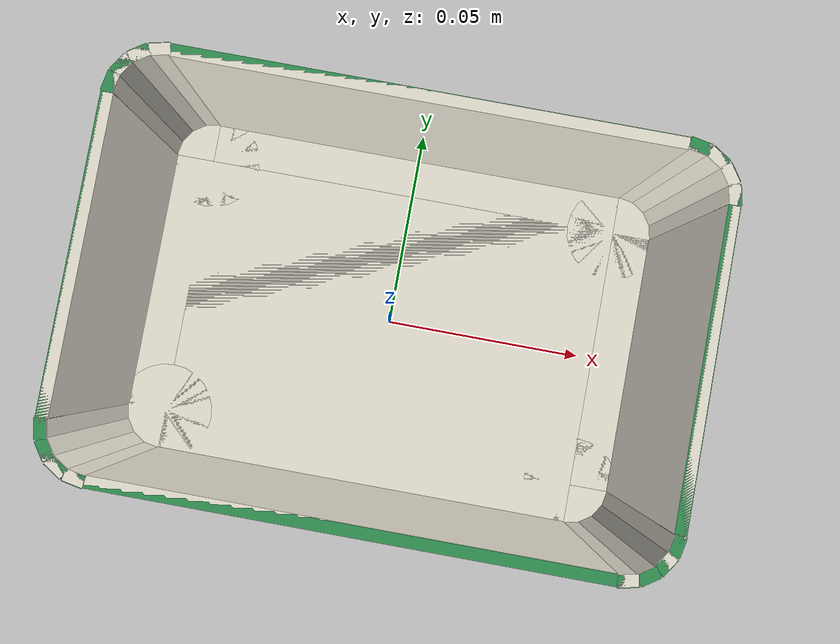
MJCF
<mujoco model="lock_box_small">
  <!-- AUTO-GENERATED by build_objects.py. Do not edit by hand.
       130 x 90 x 55 mm open container with 12 mm rounded corners:
       floor slab plus 2.5 mm walls. Origin at bottom center. -->

  <default>
    <default class="box_geom">
      <geom condim="4" friction="1.2 0.05 0.001" solref="0.01 1" density="900" rgba="0.95 0.93 0.87 1"/>
    </default>
    <default class="box_print">
      <geom contype="0" conaffinity="0" group="1" mass="0"/>
    </default>
  </default>

  <worldbody>
    <body name="root">
      <freejoint name="free"/>
      <!-- Floor. -->
      <geom class="box_geom" type="box" pos="+0.00000 +0.00000 +0.00200" size="+0.06500 +0.03300 +0.00200"/>
      <geom class="box_geom" type="box" pos="+0.00000 +0.00000 +0.00200" size="+0.05300 +0.04500 +0.00200"/>
      <geom class="box_geom" type="cylinder" pos="+0.05300 +0.03300 +0.00200" size="+0.01200 +0.00200"/>
      <geom class="box_geom" type="cylinder" pos="+0.05300 -0.03300 +0.00200" size="+0.01200 +0.00200"/>
      <geom class="box_geom" type="cylinder" pos="-0.05300 +0.03300 +0.00200" size="+0.01200 +0.00200"/>
      <geom class="box_geom" type="cylinder" pos="-0.05300 -0.03300 +0.00200" size="+0.01200 +0.00200"/>

      <!-- Side walls. -->
      <geom class="box_geom" type="box"  pos="+0.06375 +0.00000 +0.02950" size="+0.00125 +0.03300 +0.02550"/>
      <geom class="box_geom" type="box"  pos="-0.06375 +0.00000 +0.02950" size="+0.00125 +0.03300 +0.02550"/>
      <geom class="box_geom" type="box"  pos="+0.00000 +0.04375 +0.02950" size="+0.05300 +0.00125 +0.02550"/>
      <geom class="box_geom" type="box"  pos="+0.00000 -0.04375 +0.02950" size="+0.05300 +0.00125 +0.02550"/>
      <geom class="box_geom" type="box"  pos="+0.06354 +0.03510 +0.02950" quat="+0.995185 +0.000000 +0.000000 +0.098017" size="+0.00125 +0.00218 +0.02550"/>
      <geom class="box_geom" type="box"  pos="+0.06194 +0.03897 +0.02950" quat="+0.956940 +0.000000 +0.000000 +0.290285" size="+0.00125 +0.00218 +0.02550"/>
      <geom class="box_geom" type="box"  pos="+0.05897 +0.04194 +0.02950" quat="+0.881921 +0.000000 +0.000000 +0.471397" size="+0.00125 +0.00218 +0.02550"/>
      <geom class="box_geom" type="box"  pos="+0.05510 +0.04354 +0.02950" quat="+0.773010 +0.000000 +0.000000 +0.634393" size="+0.00125 +0.00218 +0.02550"/>
      <geom class="box_geom" type="box"  pos="+0.05510 -0.04354 +0.02950" quat="+0.773010 +0.000000 +0.000000 -0.634393" size="+0.00125 +0.00218 +0.02550"/>
      <geom class="box_geom" type="box"  pos="+0.05897 -0.04194 +0.02950" quat="+0.881921 +0.000000 +0.000000 -0.471397" size="+0.00125 +0.00218 +0.02550"/>
      <geom class="box_geom" type="box"  pos="+0.06194 -0.03897 +0.02950" quat="+0.956940 +0.000000 +0.000000 -0.290285" size="+0.00125 +0.00218 +0.02550"/>
      <geom class="box_geom" type="box"  pos="+0.06354 -0.03510 +0.02950" quat="+0.995185 +0.000000 +0.000000 -0.098017" size="+0.00125 +0.00218 +0.02550"/>
      <geom class="box_geom" type="box"  pos="-0.05510 +0.04354 +0.02950" quat="+0.634393 +0.000000 +0.000000 +0.773010" size="+0.00125 +0.00218 +0.02550"/>
      <geom class="box_geom" type="box"  pos="-0.05897 +0.04194 +0.02950" quat="+0.471397 +0.000000 +0.000000 +0.881921" size="+0.00125 +0.00218 +0.02550"/>
      <geom class="box_geom" type="box"  pos="-0.06194 +0.03897 +0.02950" quat="+0.290285 +0.000000 +0.000000 +0.956940" size="+0.00125 +0.00218 +0.02550"/>
      <geom class="box_geom" type="box"  pos="-0.06354 +0.03510 +0.02950" quat="+0.098017 +0.000000 +0.000000 +0.995185" size="+0.00125 +0.00218 +0.02550"/>
      <geom class="box_geom" type="box"  pos="-0.06354 -0.03510 +0.02950" quat="+0.098017 +0.000000 +0.000000 -0.995185" size="+0.00125 +0.00218 +0.02550"/>
      <geom class="box_geom" type="box"  pos="-0.06194 -0.03897 +0.02950" quat="+0.290285 +0.000000 +0.000000 -0.956940" size="+0.00125 +0.00218 +0.02550"/>
      <geom class="box_geom" type="box"  pos="-0.05897 -0.04194 +0.02950" quat="+0.471397 +0.000000 +0.000000 -0.881921" size="+0.00125 +0.00218 +0.02550"/>
      <geom class="box_geom" type="box"  pos="-0.05510 -0.04354 +0.02950" quat="+0.634393 +0.000000 +0.000000 -0.773010" size="+0.00125 +0.00218 +0.02550"/>
      <!-- Coloured rim (visual only). -->
      <geom class="box_print" type="box" rgba="0.20 0.60 0.34 1" pos="+0.06385 +0.00000 +0.05050" size="+0.00125 +0.03310 +0.00450"/>
      <geom class="box_print" type="box" rgba="0.20 0.60 0.34 1" pos="-0.06385 +0.00000 +0.05050" size="+0.00125 +0.03310 +0.00450"/>
      <geom class="box_print" type="box" rgba="0.20 0.60 0.34 1" pos="+0.00000 +0.04385 +0.05050" size="+0.05310 +0.00125 +0.00450"/>
      <geom class="box_print" type="box" rgba="0.20 0.60 0.34 1" pos="+0.00000 -0.04385 +0.05050" size="+0.05310 +0.00125 +0.00450"/>
      <geom class="box_print" type="box" rgba="0.20 0.60 0.34 1" pos="+0.06364 +0.03520 +0.05050" quat="+0.995185 +0.000000 +0.000000 +0.098017" size="+0.00125 +0.00218 +0.00450"/>
      <geom class="box_print" type="box" rgba="0.20 0.60 0.34 1" pos="+0.06204 +0.03907 +0.05050" quat="+0.956940 +0.000000 +0.000000 +0.290285" size="+0.00125 +0.00218 +0.00450"/>
      <geom class="box_print" type="box" rgba="0.20 0.60 0.34 1" pos="+0.05907 +0.04204 +0.05050" quat="+0.881921 +0.000000 +0.000000 +0.471397" size="+0.00125 +0.00218 +0.00450"/>
      <geom class="box_print" type="box" rgba="0.20 0.60 0.34 1" pos="+0.05520 +0.04364 +0.05050" quat="+0.773010 +0.000000 +0.000000 +0.634393" size="+0.00125 +0.00218 +0.00450"/>
      <geom class="box_print" type="box" rgba="0.20 0.60 0.34 1" pos="+0.05520 -0.04364 +0.05050" quat="+0.773010 +0.000000 +0.000000 -0.634393" size="+0.00125 +0.00218 +0.00450"/>
      <geom class="box_print" type="box" rgba="0.20 0.60 0.34 1" pos="+0.05907 -0.04204 +0.05050" quat="+0.881921 +0.000000 +0.000000 -0.471397" size="+0.00125 +0.00218 +0.00450"/>
      <geom class="box_print" type="box" rgba="0.20 0.60 0.34 1" pos="+0.06204 -0.03907 +0.05050" quat="+0.956940 +0.000000 +0.000000 -0.290285" size="+0.00125 +0.00218 +0.00450"/>
      <geom class="box_print" type="box" rgba="0.20 0.60 0.34 1" pos="+0.06364 -0.03520 +0.05050" quat="+0.995185 +0.000000 +0.000000 -0.098017" size="+0.00125 +0.00218 +0.00450"/>
      <geom class="box_print" type="box" rgba="0.20 0.60 0.34 1" pos="-0.05520 +0.04364 +0.05050" quat="+0.634393 +0.000000 +0.000000 +0.773010" size="+0.00125 +0.00218 +0.00450"/>
      <geom class="box_print" type="box" rgba="0.20 0.60 0.34 1" pos="-0.05907 +0.04204 +0.05050" quat="+0.471397 +0.000000 +0.000000 +0.881921" size="+0.00125 +0.00218 +0.00450"/>
      <geom class="box_print" type="box" rgba="0.20 0.60 0.34 1" pos="-0.06204 +0.03907 +0.05050" quat="+0.290285 +0.000000 +0.000000 +0.956940" size="+0.00125 +0.00218 +0.00450"/>
      <geom class="box_print" type="box" rgba="0.20 0.60 0.34 1" pos="-0.06364 +0.03520 +0.05050" quat="+0.098017 +0.000000 +0.000000 +0.995185" size="+0.00125 +0.00218 +0.00450"/>
      <geom class="box_print" type="box" rgba="0.20 0.60 0.34 1" pos="-0.06364 -0.03520 +0.05050" quat="+0.098017 +0.000000 +0.000000 -0.995185" size="+0.00125 +0.00218 +0.00450"/>
      <geom class="box_print" type="box" rgba="0.20 0.60 0.34 1" pos="-0.06204 -0.03907 +0.05050" quat="+0.290285 +0.000000 +0.000000 -0.956940" size="+0.00125 +0.00218 +0.00450"/>
      <geom class="box_print" type="box" rgba="0.20 0.60 0.34 1" pos="-0.05907 -0.04204 +0.05050" quat="+0.471397 +0.000000 +0.000000 -0.881921" size="+0.00125 +0.00218 +0.00450"/>
      <geom class="box_print" type="box" rgba="0.20 0.60 0.34 1" pos="-0.05520 -0.04364 +0.05050" quat="+0.634393 +0.000000 +0.000000 -0.773010" size="+0.00125 +0.00218 +0.00450"/>
    </body>
  </worldbody>
</mujoco>
